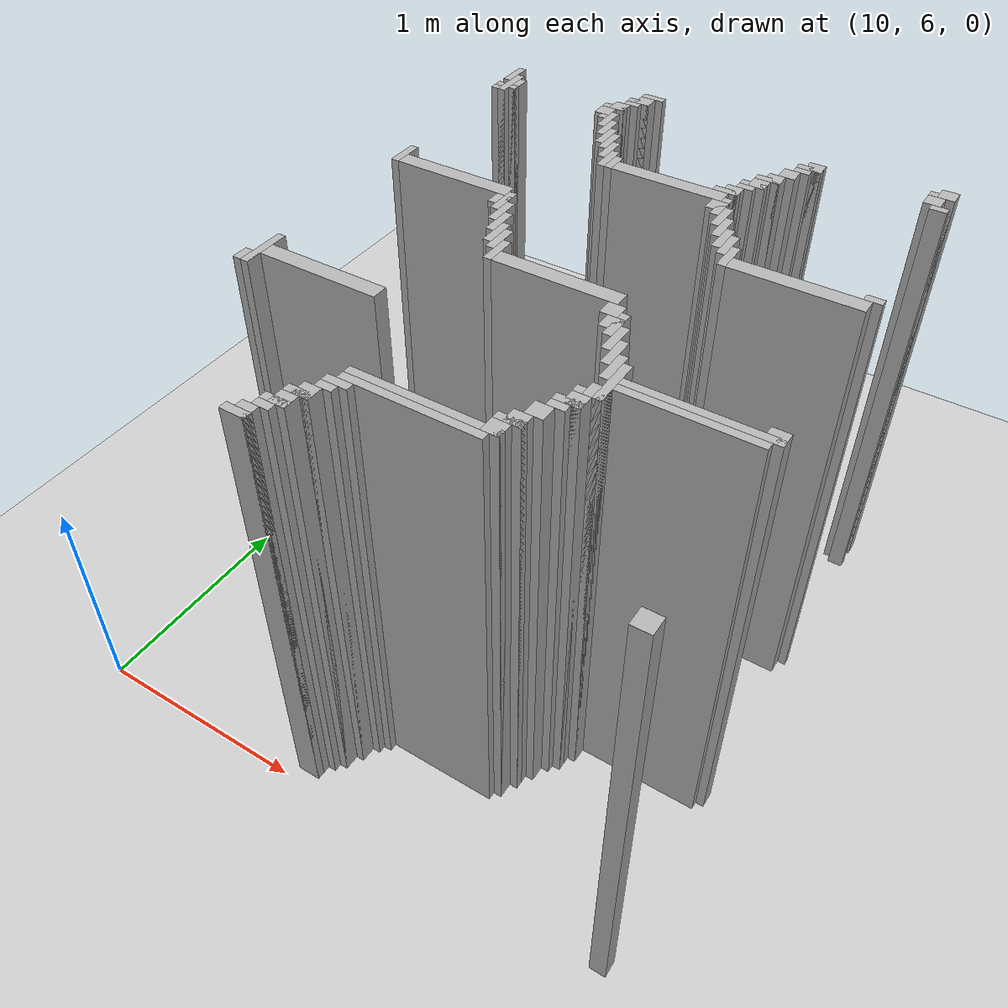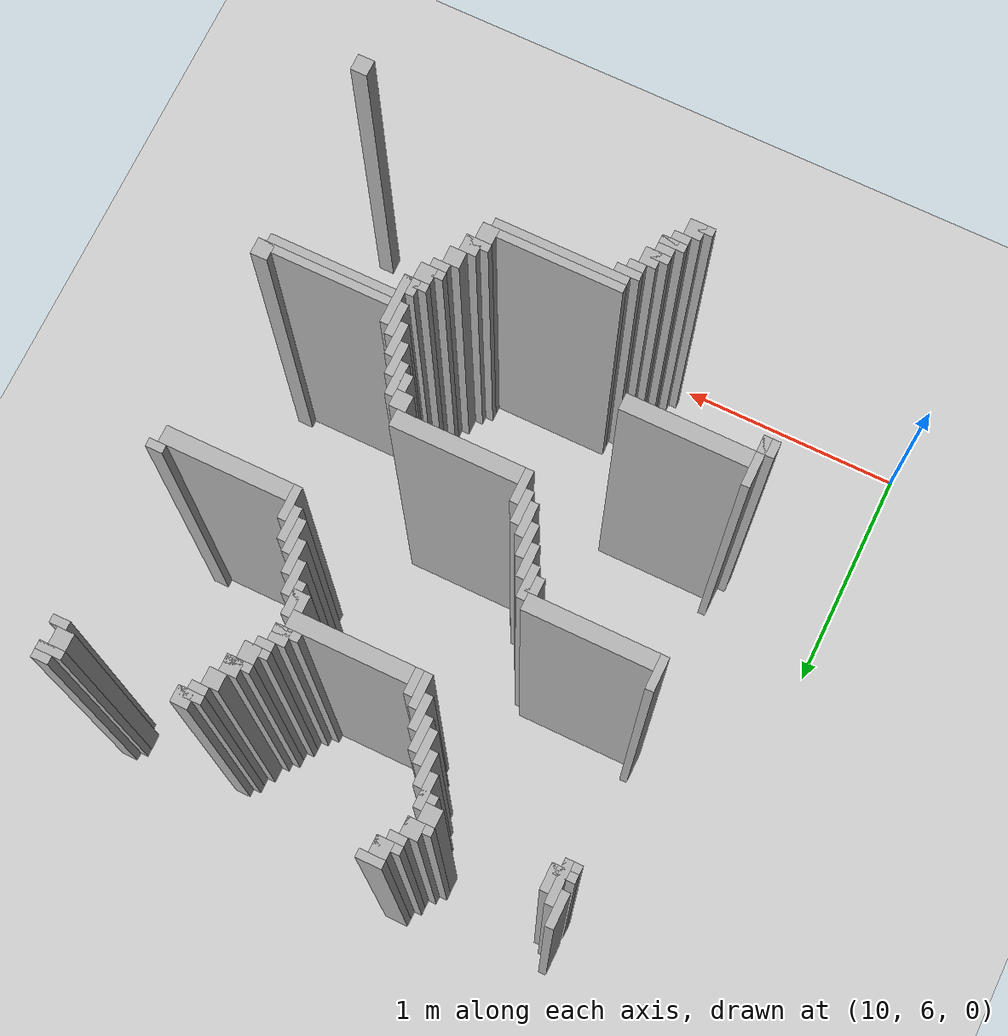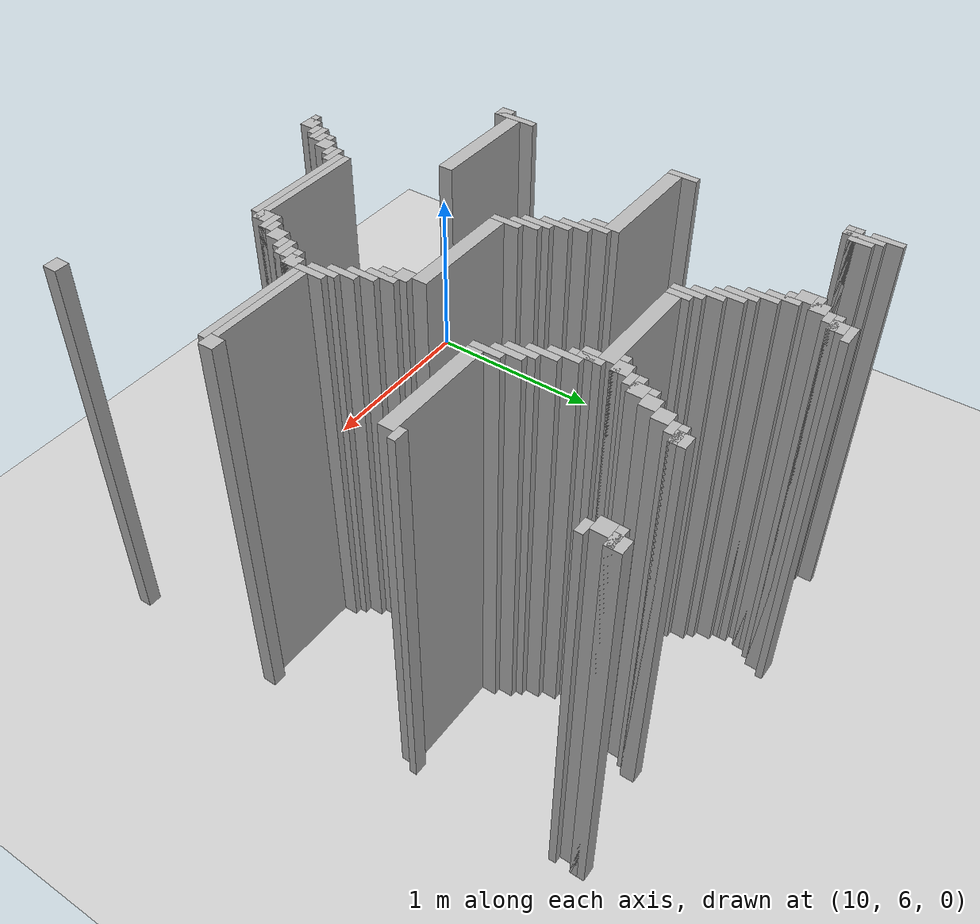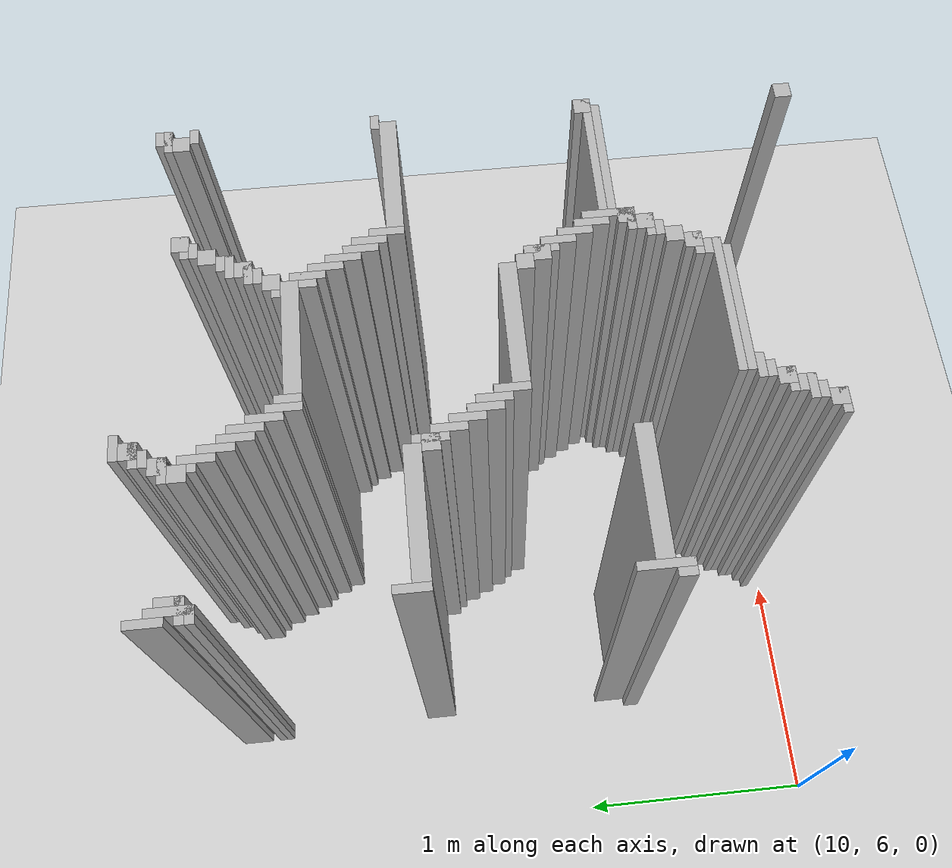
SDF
<sdf version="1.6">
 <world name="slam_world">
  <model name="ground_plane">
   <static>true</static>
   <link name="link">
    <collision name="collision">
     <geometry><plane><normal>0 0 1</normal><size>100 100</size></plane></geometry>
    </collision>
    <visual name="visual">
     <geometry><plane><normal>0 0 1</normal><size>100 100</size></plane></geometry>
     <material>
      <ambient>0.8 0.8 0.8 1</ambient>
      <diffuse>0.8 0.8 0.8 1</diffuse>
      <specular>0.8 0.8 0.8 1</specular>
     </material>
    </visual>
   </link>
  </model>
  <model name="wall_2947">
   <static>true</static>
   <pose>11.154292343387471 8.718097447795824 1.0 0 0 0</pose>
   <link name="link">
    <collision name="collision">
     <geometry><box><size>0.10440835266821345 0.03480278422273782 2.0</size></box></geometry>
    </collision>
    <visual name="visual">
     <geometry><box><size>0.10440835266821345 0.03480278422273782 2.0</size></box></geometry>
     <material><ambient>0.5 0.5 0.5 1</ambient><diffuse>0.7 0.7 0.7 1</diffuse></material>
    </visual>
   </link>
  </model>
  <model name="wall_2958">
   <static>true</static>
   <pose>11.1368909512761 8.665893271461716 1.0 0 0 0</pose>
   <link name="link">
    <collision name="collision">
     <geometry><box><size>0.06960556844547564 0.06960556844547564 2.0</size></box></geometry>
    </collision>
    <visual name="visual">
     <geometry><box><size>0.06960556844547564 0.06960556844547564 2.0</size></box></geometry>
     <material><ambient>0.5 0.5 0.5 1</ambient><diffuse>0.7 0.7 0.7 1</diffuse></material>
    </visual>
   </link>
  </model>
  <model name="wall_2971">
   <static>true</static>
   <pose>10.493039443155451 8.596287703016241 1.0 0 0 0</pose>
   <link name="link">
    <collision name="collision">
     <geometry><box><size>0.03480278422273782 0.13921113689095127 2.0</size></box></geometry>
    </collision>
    <visual name="visual">
     <geometry><box><size>0.03480278422273782 0.13921113689095127 2.0</size></box></geometry>
     <material><ambient>0.5 0.5 0.5 1</ambient><diffuse>0.7 0.7 0.7 1</diffuse></material>
    </visual>
   </link>
  </model>
  <model name="wall_2972">
   <static>true</static>
   <pose>11.119489559164732 8.648491879350347 1.0 0 0 0</pose>
   <link name="link">
    <collision name="collision">
     <geometry><box><size>0.10440835266821345 0.03480278422273782 2.0</size></box></geometry>
    </collision>
    <visual name="visual">
     <geometry><box><size>0.10440835266821345 0.03480278422273782 2.0</size></box></geometry>
     <material><ambient>0.5 0.5 0.5 1</ambient><diffuse>0.7 0.7 0.7 1</diffuse></material>
    </visual>
   </link>
  </model>
  <model name="wall_2982">
   <static>true</static>
   <pose>11.102088167053363 8.61368909512761 1.0 0 0 0</pose>
   <link name="link">
    <collision name="collision">
     <geometry><box><size>0.06960556844547564 0.03480278422273782 2.0</size></box></geometry>
    </collision>
    <visual name="visual">
     <geometry><box><size>0.06960556844547564 0.03480278422273782 2.0</size></box></geometry>
     <material><ambient>0.5 0.5 0.5 1</ambient><diffuse>0.7 0.7 0.7 1</diffuse></material>
    </visual>
   </link>
  </model>
  <model name="wall_2995">
   <static>true</static>
   <pose>10.52784222737819 8.509280742459396 1.0 0 0 0</pose>
   <link name="link">
    <collision name="collision">
     <geometry><box><size>0.03480278422273782 0.17401392111368907 2.0</size></box></geometry>
    </collision>
    <visual name="visual">
     <geometry><box><size>0.03480278422273782 0.17401392111368907 2.0</size></box></geometry>
     <material><ambient>0.5 0.5 0.5 1</ambient><diffuse>0.7 0.7 0.7 1</diffuse></material>
    </visual>
   </link>
  </model>
  <model name="wall_2996">
   <static>true</static>
   <pose>11.067285382830626 8.561484918793504 1.0 0 0 0</pose>
   <link name="link">
    <collision name="collision">
     <geometry><box><size>0.06960556844547564 0.06960556844547564 2.0</size></box></geometry>
    </collision>
    <visual name="visual">
     <geometry><box><size>0.06960556844547564 0.06960556844547564 2.0</size></box></geometry>
     <material><ambient>0.5 0.5 0.5 1</ambient><diffuse>0.7 0.7 0.7 1</diffuse></material>
    </visual>
   </link>
  </model>
  <model name="wall_2997">
   <static>true</static>
   <pose>12.529002320185615 8.561484918793504 1.0 0 0 0</pose>
   <link name="link">
    <collision name="collision">
     <geometry><box><size>0.06960556844547564 0.06960556844547564 2.0</size></box></geometry>
    </collision>
    <visual name="visual">
     <geometry><box><size>0.06960556844547564 0.06960556844547564 2.0</size></box></geometry>
     <material><ambient>0.5 0.5 0.5 1</ambient><diffuse>0.7 0.7 0.7 1</diffuse></material>
    </visual>
   </link>
  </model>
  <model name="wall_3010">
   <static>true</static>
   <pose>10.562645011600928 8.509280742459396 1.0 0 0 0</pose>
   <link name="link">
    <collision name="collision">
     <geometry><box><size>0.03480278422273782 0.10440835266821345 2.0</size></box></geometry>
    </collision>
    <visual name="visual">
     <geometry><box><size>0.03480278422273782 0.10440835266821345 2.0</size></box></geometry>
     <material><ambient>0.5 0.5 0.5 1</ambient><diffuse>0.7 0.7 0.7 1</diffuse></material>
    </visual>
   </link>
  </model>
  <model name="wall_3011">
   <static>true</static>
   <pose>11.049883990719257 8.544083526682135 1.0 0 0 0</pose>
   <link name="link">
    <collision name="collision">
     <geometry><box><size>0.10440835266821345 0.03480278422273782 2.0</size></box></geometry>
    </collision>
    <visual name="visual">
     <geometry><box><size>0.10440835266821345 0.03480278422273782 2.0</size></box></geometry>
     <material><ambient>0.5 0.5 0.5 1</ambient><diffuse>0.7 0.7 0.7 1</diffuse></material>
    </visual>
   </link>
  </model>
  <model name="wall_3012">
   <static>true</static>
   <pose>12.511600928074245 8.544083526682135 1.0 0 0 0</pose>
   <link name="link">
    <collision name="collision">
     <geometry><box><size>0.10440835266821345 0.03480278422273782 2.0</size></box></geometry>
    </collision>
    <visual name="visual">
     <geometry><box><size>0.10440835266821345 0.03480278422273782 2.0</size></box></geometry>
     <material><ambient>0.5 0.5 0.5 1</ambient><diffuse>0.7 0.7 0.7 1</diffuse></material>
    </visual>
   </link>
  </model>
  <model name="wall_3023">
   <static>true</static>
   <pose>11.032482598607888 8.491879350348027 1.0 0 0 0</pose>
   <link name="link">
    <collision name="collision">
     <geometry><box><size>0.06960556844547564 0.06960556844547564 2.0</size></box></geometry>
    </collision>
    <visual name="visual">
     <geometry><box><size>0.06960556844547564 0.06960556844547564 2.0</size></box></geometry>
     <material><ambient>0.5 0.5 0.5 1</ambient><diffuse>0.7 0.7 0.7 1</diffuse></material>
    </visual>
   </link>
  </model>
  <model name="wall_3024">
   <static>true</static>
   <pose>12.006960556844547 8.491879350348027 1.0 0 0 0</pose>
   <link name="link">
    <collision name="collision">
     <geometry><box><size>0.06960556844547564 0.06960556844547564 2.0</size></box></geometry>
    </collision>
    <visual name="visual">
     <geometry><box><size>0.06960556844547564 0.06960556844547564 2.0</size></box></geometry>
     <material><ambient>0.5 0.5 0.5 1</ambient><diffuse>0.7 0.7 0.7 1</diffuse></material>
    </visual>
   </link>
  </model>
  <model name="wall_3025">
   <static>true</static>
   <pose>12.494199535962876 8.491879350348027 1.0 0 0 0</pose>
   <link name="link">
    <collision name="collision">
     <geometry><box><size>0.06960556844547564 0.06960556844547564 2.0</size></box></geometry>
    </collision>
    <visual name="visual">
     <geometry><box><size>0.06960556844547564 0.06960556844547564 2.0</size></box></geometry>
     <material><ambient>0.5 0.5 0.5 1</ambient><diffuse>0.7 0.7 0.7 1</diffuse></material>
    </visual>
   </link>
  </model>
  <model name="wall_3036">
   <static>true</static>
   <pose>10.52784222737819 8.474477958236658 1.0 0 0 0</pose>
   <link name="link">
    <collision name="collision">
     <geometry><box><size>0.10440835266821345 0.03480278422273782 2.0</size></box></geometry>
    </collision>
    <visual name="visual">
     <geometry><box><size>0.10440835266821345 0.03480278422273782 2.0</size></box></geometry>
     <material><ambient>0.5 0.5 0.5 1</ambient><diffuse>0.7 0.7 0.7 1</diffuse></material>
    </visual>
   </link>
  </model>
  <model name="wall_3037">
   <static>true</static>
   <pose>11.084686774941995 8.422273781902552 1.0 0 0 0</pose>
   <link name="link">
    <collision name="collision">
     <geometry><box><size>0.03480278422273782 0.13921113689095127 2.0</size></box></geometry>
    </collision>
    <visual name="visual">
     <geometry><box><size>0.03480278422273782 0.13921113689095127 2.0</size></box></geometry>
     <material><ambient>0.5 0.5 0.5 1</ambient><diffuse>0.7 0.7 0.7 1</diffuse></material>
    </visual>
   </link>
  </model>
  <model name="wall_3038">
   <static>true</static>
   <pose>11.989559164733178 8.474477958236658 1.0 0 0 0</pose>
   <link name="link">
    <collision name="collision">
     <geometry><box><size>0.10440835266821345 0.03480278422273782 2.0</size></box></geometry>
    </collision>
    <visual name="visual">
     <geometry><box><size>0.10440835266821345 0.03480278422273782 2.0</size></box></geometry>
     <material><ambient>0.5 0.5 0.5 1</ambient><diffuse>0.7 0.7 0.7 1</diffuse></material>
    </visual>
   </link>
  </model>
  <model name="wall_3052">
   <static>true</static>
   <pose>10.51044083526682 8.43967517401392 1.0 0 0 0</pose>
   <link name="link">
    <collision name="collision">
     <geometry><box><size>0.06960556844547564 0.03480278422273782 2.0</size></box></geometry>
    </collision>
    <visual name="visual">
     <geometry><box><size>0.06960556844547564 0.03480278422273782 2.0</size></box></geometry>
     <material><ambient>0.5 0.5 0.5 1</ambient><diffuse>0.7 0.7 0.7 1</diffuse></material>
    </visual>
   </link>
  </model>
  <model name="wall_3053">
   <static>true</static>
   <pose>11.067285382830626 8.43967517401392 1.0 0 0 0</pose>
   <link name="link">
    <collision name="collision">
     <geometry><box><size>0.06960556844547564 0.03480278422273782 2.0</size></box></geometry>
    </collision>
    <visual name="visual">
     <geometry><box><size>0.06960556844547564 0.03480278422273782 2.0</size></box></geometry>
     <material><ambient>0.5 0.5 0.5 1</ambient><diffuse>0.7 0.7 0.7 1</diffuse></material>
    </visual>
   </link>
  </model>
  <model name="wall_3054">
   <static>true</static>
   <pose>11.97215777262181 8.43967517401392 1.0 0 0 0</pose>
   <link name="link">
    <collision name="collision">
     <geometry><box><size>0.06960556844547564 0.03480278422273782 2.0</size></box></geometry>
    </collision>
    <visual name="visual">
     <geometry><box><size>0.06960556844547564 0.03480278422273782 2.0</size></box></geometry>
     <material><ambient>0.5 0.5 0.5 1</ambient><diffuse>0.7 0.7 0.7 1</diffuse></material>
    </visual>
   </link>
  </model>
  <model name="wall_3055">
   <static>true</static>
   <pose>12.529002320185615 8.43967517401392 1.0 0 0 0</pose>
   <link name="link">
    <collision name="collision">
     <geometry><box><size>0.06960556844547564 0.03480278422273782 2.0</size></box></geometry>
    </collision>
    <visual name="visual">
     <geometry><box><size>0.06960556844547564 0.03480278422273782 2.0</size></box></geometry>
     <material><ambient>0.5 0.5 0.5 1</ambient><diffuse>0.7 0.7 0.7 1</diffuse></material>
    </visual>
   </link>
  </model>
  <model name="wall_3070">
   <static>true</static>
   <pose>11.119489559164732 8.352668213457076 1.0 0 0 0</pose>
   <link name="link">
    <collision name="collision">
     <geometry><box><size>0.03480278422273782 0.13921113689095127 2.0</size></box></geometry>
    </collision>
    <visual name="visual">
     <geometry><box><size>0.03480278422273782 0.13921113689095127 2.0</size></box></geometry>
     <material><ambient>0.5 0.5 0.5 1</ambient><diffuse>0.7 0.7 0.7 1</diffuse></material>
    </visual>
   </link>
  </model>
  <model name="wall_3071">
   <static>true</static>
   <pose>11.937354988399072 8.387470997679815 1.0 0 0 0</pose>
   <link name="link">
    <collision name="collision">
     <geometry><box><size>0.06960556844547564 0.06960556844547564 2.0</size></box></geometry>
    </collision>
    <visual name="visual">
     <geometry><box><size>0.06960556844547564 0.06960556844547564 2.0</size></box></geometry>
     <material><ambient>0.5 0.5 0.5 1</ambient><diffuse>0.7 0.7 0.7 1</diffuse></material>
    </visual>
   </link>
  </model>
  <model name="wall_3087">
   <static>true</static>
   <pose>11.154292343387471 8.2830626450116 1.0 0 0 0</pose>
   <link name="link">
    <collision name="collision">
     <geometry><box><size>0.03480278422273782 0.13921113689095127 2.0</size></box></geometry>
    </collision>
    <visual name="visual">
     <geometry><box><size>0.03480278422273782 0.13921113689095127 2.0</size></box></geometry>
     <material><ambient>0.5 0.5 0.5 1</ambient><diffuse>0.7 0.7 0.7 1</diffuse></material>
    </visual>
   </link>
  </model>
  <model name="wall_3088">
   <static>true</static>
   <pose>11.902552204176333 8.317865429234338 1.0 0 0 0</pose>
   <link name="link">
    <collision name="collision">
     <geometry><box><size>0.06960556844547564 0.06960556844547564 2.0</size></box></geometry>
    </collision>
    <visual name="visual">
     <geometry><box><size>0.06960556844547564 0.06960556844547564 2.0</size></box></geometry>
     <material><ambient>0.5 0.5 0.5 1</ambient><diffuse>0.7 0.7 0.7 1</diffuse></material>
    </visual>
   </link>
  </model>
  <model name="wall_3104">
   <static>true</static>
   <pose>11.189095127610209 8.248259860788863 1.0 0 0 0</pose>
   <link name="link">
    <collision name="collision">
     <geometry><box><size>0.03480278422273782 0.13921113689095127 2.0</size></box></geometry>
    </collision>
    <visual name="visual">
     <geometry><box><size>0.03480278422273782 0.13921113689095127 2.0</size></box></geometry>
     <material><ambient>0.5 0.5 0.5 1</ambient><diffuse>0.7 0.7 0.7 1</diffuse></material>
    </visual>
   </link>
  </model>
  <model name="wall_3105">
   <static>true</static>
   <pose>11.885150812064964 8.30046403712297 1.0 0 0 0</pose>
   <link name="link">
    <collision name="collision">
     <geometry><box><size>0.10440835266821345 0.03480278422273782 2.0</size></box></geometry>
    </collision>
    <visual name="visual">
     <geometry><box><size>0.10440835266821345 0.03480278422273782 2.0</size></box></geometry>
     <material><ambient>0.5 0.5 0.5 1</ambient><diffuse>0.7 0.7 0.7 1</diffuse></material>
    </visual>
   </link>
  </model>
  <model name="wall_3119">
   <static>true</static>
   <pose>11.867749419953595 8.248259860788863 1.0 0 0 0</pose>
   <link name="link">
    <collision name="collision">
     <geometry><box><size>0.06960556844547564 0.06960556844547564 2.0</size></box></geometry>
    </collision>
    <visual name="visual">
     <geometry><box><size>0.06960556844547564 0.06960556844547564 2.0</size></box></geometry>
     <material><ambient>0.5 0.5 0.5 1</ambient><diffuse>0.7 0.7 0.7 1</diffuse></material>
    </visual>
   </link>
  </model>
  <model name="wall_3134">
   <static>true</static>
   <pose>11.223897911832946 8.178654292343387 1.0 0 0 0</pose>
   <link name="link">
    <collision name="collision">
     <geometry><box><size>0.03480278422273782 0.13921113689095127 2.0</size></box></geometry>
    </collision>
    <visual name="visual">
     <geometry><box><size>0.03480278422273782 0.13921113689095127 2.0</size></box></geometry>
     <material><ambient>0.5 0.5 0.5 1</ambient><diffuse>0.7 0.7 0.7 1</diffuse></material>
    </visual>
   </link>
  </model>
  <model name="wall_3135">
   <static>true</static>
   <pose>11.850348027842227 8.230858468677495 1.0 0 0 0</pose>
   <link name="link">
    <collision name="collision">
     <geometry><box><size>0.10440835266821345 0.03480278422273782 2.0</size></box></geometry>
    </collision>
    <visual name="visual">
     <geometry><box><size>0.10440835266821345 0.03480278422273782 2.0</size></box></geometry>
     <material><ambient>0.5 0.5 0.5 1</ambient><diffuse>0.7 0.7 0.7 1</diffuse></material>
    </visual>
   </link>
  </model>
  <model name="wall_3146">
   <static>true</static>
   <pose>11.832946635730858 8.196055684454755 1.0 0 0 0</pose>
   <link name="link">
    <collision name="collision">
     <geometry><box><size>0.06960556844547564 0.03480278422273782 2.0</size></box></geometry>
    </collision>
    <visual name="visual">
     <geometry><box><size>0.06960556844547564 0.03480278422273782 2.0</size></box></geometry>
     <material><ambient>0.5 0.5 0.5 1</ambient><diffuse>0.7 0.7 0.7 1</diffuse></material>
    </visual>
   </link>
  </model>
  <model name="wall_3160">
   <static>true</static>
   <pose>11.258700696055683 8.109048723897912 1.0 0 0 0</pose>
   <link name="link">
    <collision name="collision">
     <geometry><box><size>0.03480278422273782 0.13921113689095127 2.0</size></box></geometry>
    </collision>
    <visual name="visual">
     <geometry><box><size>0.03480278422273782 0.13921113689095127 2.0</size></box></geometry>
     <material><ambient>0.5 0.5 0.5 1</ambient><diffuse>0.7 0.7 0.7 1</diffuse></material>
    </visual>
   </link>
  </model>
  <model name="wall_3161">
   <static>true</static>
   <pose>11.79814385150812 8.14385150812065 1.0 0 0 0</pose>
   <link name="link">
    <collision name="collision">
     <geometry><box><size>0.06960556844547564 0.06960556844547564 2.0</size></box></geometry>
    </collision>
    <visual name="visual">
     <geometry><box><size>0.06960556844547564 0.06960556844547564 2.0</size></box></geometry>
     <material><ambient>0.5 0.5 0.5 1</ambient><diffuse>0.7 0.7 0.7 1</diffuse></material>
    </visual>
   </link>
  </model>
  <model name="wall_3173">
   <static>true</static>
   <pose>11.293503480278423 8.091647331786543 1.0 0 0 0</pose>
   <link name="link">
    <collision name="collision">
     <geometry><box><size>0.03480278422273782 0.10440835266821345 2.0</size></box></geometry>
    </collision>
    <visual name="visual">
     <geometry><box><size>0.03480278422273782 0.10440835266821345 2.0</size></box></geometry>
     <material><ambient>0.5 0.5 0.5 1</ambient><diffuse>0.7 0.7 0.7 1</diffuse></material>
    </visual>
   </link>
  </model>
  <model name="wall_3174">
   <static>true</static>
   <pose>11.780742459396752 8.12645011600928 1.0 0 0 0</pose>
   <link name="link">
    <collision name="collision">
     <geometry><box><size>0.10440835266821345 0.03480278422273782 2.0</size></box></geometry>
    </collision>
    <visual name="visual">
     <geometry><box><size>0.10440835266821345 0.03480278422273782 2.0</size></box></geometry>
     <material><ambient>0.5 0.5 0.5 1</ambient><diffuse>0.7 0.7 0.7 1</diffuse></material>
    </visual>
   </link>
  </model>
  <model name="wall_3188">
   <static>true</static>
   <pose>11.554524361948955 8.074245939675174 1.0 0 0 0</pose>
   <link name="link">
    <collision name="collision">
     <geometry><box><size>0.4872389791183295 0.06960556844547564 2.0</size></box></geometry>
    </collision>
    <visual name="visual">
     <geometry><box><size>0.4872389791183295 0.06960556844547564 2.0</size></box></geometry>
     <material><ambient>0.5 0.5 0.5 1</ambient><diffuse>0.7 0.7 0.7 1</diffuse></material>
    </visual>
   </link>
  </model>
  <model name="wall_3201">
   <static>true</static>
   <pose>11.81554524361949 8.004640371229698 1.0 0 0 0</pose>
   <link name="link">
    <collision name="collision">
     <geometry><box><size>0.03480278422273782 0.13921113689095127 2.0</size></box></geometry>
    </collision>
    <visual name="visual">
     <geometry><box><size>0.03480278422273782 0.13921113689095127 2.0</size></box></geometry>
     <material><ambient>0.5 0.5 0.5 1</ambient><diffuse>0.7 0.7 0.7 1</diffuse></material>
    </visual>
   </link>
  </model>
  <model name="wall_3214">
   <static>true</static>
   <pose>11.79814385150812 8.004640371229698 1.0 0 0 0</pose>
   <link name="link">
    <collision name="collision">
     <geometry><box><size>0.06960556844547564 0.06960556844547564 2.0</size></box></geometry>
    </collision>
    <visual name="visual">
     <geometry><box><size>0.06960556844547564 0.06960556844547564 2.0</size></box></geometry>
     <material><ambient>0.5 0.5 0.5 1</ambient><diffuse>0.7 0.7 0.7 1</diffuse></material>
    </visual>
   </link>
  </model>
  <model name="wall_3227">
   <static>true</static>
   <pose>11.850348027842227 7.935034802784222 1.0 0 0 0</pose>
   <link name="link">
    <collision name="collision">
     <geometry><box><size>0.03480278422273782 0.13921113689095127 2.0</size></box></geometry>
    </collision>
    <visual name="visual">
     <geometry><box><size>0.03480278422273782 0.13921113689095127 2.0</size></box></geometry>
     <material><ambient>0.5 0.5 0.5 1</ambient><diffuse>0.7 0.7 0.7 1</diffuse></material>
    </visual>
   </link>
  </model>
  <model name="wall_3245">
   <static>true</static>
   <pose>11.885150812064964 7.865429234338746 1.0 0 0 0</pose>
   <link name="link">
    <collision name="collision">
     <geometry><box><size>0.03480278422273782 0.13921113689095127 2.0</size></box></geometry>
    </collision>
    <visual name="visual">
     <geometry><box><size>0.03480278422273782 0.13921113689095127 2.0</size></box></geometry>
     <material><ambient>0.5 0.5 0.5 1</ambient><diffuse>0.7 0.7 0.7 1</diffuse></material>
    </visual>
   </link>
  </model>
  <model name="wall_3258">
   <static>true</static>
   <pose>11.919953596287703 7.795823665893272 1.0 0 0 0</pose>
   <link name="link">
    <collision name="collision">
     <geometry><box><size>0.03480278422273782 0.13921113689095127 2.0</size></box></geometry>
    </collision>
    <visual name="visual">
     <geometry><box><size>0.03480278422273782 0.13921113689095127 2.0</size></box></geometry>
     <material><ambient>0.5 0.5 0.5 1</ambient><diffuse>0.7 0.7 0.7 1</diffuse></material>
    </visual>
   </link>
  </model>
  <model name="wall_3271">
   <static>true</static>
   <pose>11.95475638051044 7.761020881670533 1.0 0 0 0</pose>
   <link name="link">
    <collision name="collision">
     <geometry><box><size>0.03480278422273782 0.13921113689095127 2.0</size></box></geometry>
    </collision>
    <visual name="visual">
     <geometry><box><size>0.03480278422273782 0.13921113689095127 2.0</size></box></geometry>
     <material><ambient>0.5 0.5 0.5 1</ambient><diffuse>0.7 0.7 0.7 1</diffuse></material>
    </visual>
   </link>
  </model>
  <model name="wall_3288">
   <static>true</static>
   <pose>10.52784222737819 7.691415313225058 1.0 0 0 0</pose>
   <link name="link">
    <collision name="collision">
     <geometry><box><size>0.03480278422273782 0.13921113689095127 2.0</size></box></geometry>
    </collision>
    <visual name="visual">
     <geometry><box><size>0.03480278422273782 0.13921113689095127 2.0</size></box></geometry>
     <material><ambient>0.5 0.5 0.5 1</ambient><diffuse>0.7 0.7 0.7 1</diffuse></material>
    </visual>
   </link>
  </model>
  <model name="wall_3289">
   <static>true</static>
   <pose>11.989559164733178 7.691415313225058 1.0 0 0 0</pose>
   <link name="link">
    <collision name="collision">
     <geometry><box><size>0.03480278422273782 0.13921113689095127 2.0</size></box></geometry>
    </collision>
    <visual name="visual">
     <geometry><box><size>0.03480278422273782 0.13921113689095127 2.0</size></box></geometry>
     <material><ambient>0.5 0.5 0.5 1</ambient><diffuse>0.7 0.7 0.7 1</diffuse></material>
    </visual>
   </link>
  </model>
  <model name="wall_3297">
   <static>true</static>
   <pose>12.529002320185615 7.708816705336426 1.0 0 0 0</pose>
   <link name="link">
    <collision name="collision">
     <geometry><box><size>0.06960556844547564 0.03480278422273782 2.0</size></box></geometry>
    </collision>
    <visual name="visual">
     <geometry><box><size>0.06960556844547564 0.03480278422273782 2.0</size></box></geometry>
     <material><ambient>0.5 0.5 0.5 1</ambient><diffuse>0.7 0.7 0.7 1</diffuse></material>
    </visual>
   </link>
  </model>
  <model name="wall_3307">
   <static>true</static>
   <pose>10.806264501160092 7.65661252900232 1.0 0 0 0</pose>
   <link name="link">
    <collision name="collision">
     <geometry><box><size>0.5220417633410672 0.06960556844547564 2.0</size></box></geometry>
    </collision>
    <visual name="visual">
     <geometry><box><size>0.5220417633410672 0.06960556844547564 2.0</size></box></geometry>
     <material><ambient>0.5 0.5 0.5 1</ambient><diffuse>0.7 0.7 0.7 1</diffuse></material>
    </visual>
   </link>
  </model>
  <model name="wall_3308">
   <static>true</static>
   <pose>12.267981438515081 7.65661252900232 1.0 0 0 0</pose>
   <link name="link">
    <collision name="collision">
     <geometry><box><size>0.5220417633410672 0.06960556844547564 2.0</size></box></geometry>
    </collision>
    <visual name="visual">
     <geometry><box><size>0.5220417633410672 0.06960556844547564 2.0</size></box></geometry>
     <material><ambient>0.5 0.5 0.5 1</ambient><diffuse>0.7 0.7 0.7 1</diffuse></material>
    </visual>
   </link>
  </model>
  <model name="wall_3320">
   <static>true</static>
   <pose>11.084686774941995 7.587006960556844 1.0 0 0 0</pose>
   <link name="link">
    <collision name="collision">
     <geometry><box><size>0.03480278422273782 0.13921113689095127 2.0</size></box></geometry>
    </collision>
    <visual name="visual">
     <geometry><box><size>0.03480278422273782 0.13921113689095127 2.0</size></box></geometry>
     <material><ambient>0.5 0.5 0.5 1</ambient><diffuse>0.7 0.7 0.7 1</diffuse></material>
    </visual>
   </link>
  </model>
  <model name="wall_3335">
   <static>true</static>
   <pose>11.067285382830626 7.587006960556844 1.0 0 0 0</pose>
   <link name="link">
    <collision name="collision">
     <geometry><box><size>0.06960556844547564 0.06960556844547564 2.0</size></box></geometry>
    </collision>
    <visual name="visual">
     <geometry><box><size>0.06960556844547564 0.06960556844547564 2.0</size></box></geometry>
     <material><ambient>0.5 0.5 0.5 1</ambient><diffuse>0.7 0.7 0.7 1</diffuse></material>
    </visual>
   </link>
  </model>
  <model name="wall_3350">
   <static>true</static>
   <pose>11.119489559164732 7.517401392111369 1.0 0 0 0</pose>
   <link name="link">
    <collision name="collision">
     <geometry><box><size>0.03480278422273782 0.13921113689095127 2.0</size></box></geometry>
    </collision>
    <visual name="visual">
     <geometry><box><size>0.03480278422273782 0.13921113689095127 2.0</size></box></geometry>
     <material><ambient>0.5 0.5 0.5 1</ambient><diffuse>0.7 0.7 0.7 1</diffuse></material>
    </visual>
   </link>
  </model>
  <model name="wall_3375">
   <static>true</static>
   <pose>11.154292343387471 7.447795823665893 1.0 0 0 0</pose>
   <link name="link">
    <collision name="collision">
     <geometry><box><size>0.03480278422273782 0.13921113689095127 2.0</size></box></geometry>
    </collision>
    <visual name="visual">
     <geometry><box><size>0.03480278422273782 0.13921113689095127 2.0</size></box></geometry>
     <material><ambient>0.5 0.5 0.5 1</ambient><diffuse>0.7 0.7 0.7 1</diffuse></material>
    </visual>
   </link>
  </model>
  <model name="wall_3390">
   <static>true</static>
   <pose>11.189095127610209 7.378190255220417 1.0 0 0 0</pose>
   <link name="link">
    <collision name="collision">
     <geometry><box><size>0.03480278422273782 0.13921113689095127 2.0</size></box></geometry>
    </collision>
    <visual name="visual">
     <geometry><box><size>0.03480278422273782 0.13921113689095127 2.0</size></box></geometry>
     <material><ambient>0.5 0.5 0.5 1</ambient><diffuse>0.7 0.7 0.7 1</diffuse></material>
    </visual>
   </link>
  </model>
  <model name="wall_3405">
   <static>true</static>
   <pose>11.223897911832946 7.34338747099768 1.0 0 0 0</pose>
   <link name="link">
    <collision name="collision">
     <geometry><box><size>0.03480278422273782 0.13921113689095127 2.0</size></box></geometry>
    </collision>
    <visual name="visual">
     <geometry><box><size>0.03480278422273782 0.13921113689095127 2.0</size></box></geometry>
     <material><ambient>0.5 0.5 0.5 1</ambient><diffuse>0.7 0.7 0.7 1</diffuse></material>
    </visual>
   </link>
  </model>
  <model name="wall_3427">
   <static>true</static>
   <pose>11.258700696055683 7.273781902552204 1.0 0 0 0</pose>
   <link name="link">
    <collision name="collision">
     <geometry><box><size>0.03480278422273782 0.13921113689095127 2.0</size></box></geometry>
    </collision>
    <visual name="visual">
     <geometry><box><size>0.03480278422273782 0.13921113689095127 2.0</size></box></geometry>
     <material><ambient>0.5 0.5 0.5 1</ambient><diffuse>0.7 0.7 0.7 1</diffuse></material>
    </visual>
   </link>
  </model>
  <model name="wall_3447">
   <static>true</static>
   <pose>11.537122969837586 7.238979118329466 1.0 0 0 0</pose>
   <link name="link">
    <collision name="collision">
     <geometry><box><size>0.5220417633410672 0.06960556844547564 2.0</size></box></geometry>
    </collision>
    <visual name="visual">
     <geometry><box><size>0.5220417633410672 0.06960556844547564 2.0</size></box></geometry>
     <material><ambient>0.5 0.5 0.5 1</ambient><diffuse>0.7 0.7 0.7 1</diffuse></material>
    </visual>
   </link>
  </model>
  <model name="wall_3459">
   <static>true</static>
   <pose>11.79814385150812 7.16937354988399 1.0 0 0 0</pose>
   <link name="link">
    <collision name="collision">
     <geometry><box><size>0.06960556844547564 0.06960556844547564 2.0</size></box></geometry>
    </collision>
    <visual name="visual">
     <geometry><box><size>0.06960556844547564 0.06960556844547564 2.0</size></box></geometry>
     <material><ambient>0.5 0.5 0.5 1</ambient><diffuse>0.7 0.7 0.7 1</diffuse></material>
    </visual>
   </link>
  </model>
  <model name="wall_3472">
   <static>true</static>
   <pose>11.850348027842227 7.099767981438514 1.0 0 0 0</pose>
   <link name="link">
    <collision name="collision">
     <geometry><box><size>0.03480278422273782 0.13921113689095127 2.0</size></box></geometry>
    </collision>
    <visual name="visual">
     <geometry><box><size>0.03480278422273782 0.13921113689095127 2.0</size></box></geometry>
     <material><ambient>0.5 0.5 0.5 1</ambient><diffuse>0.7 0.7 0.7 1</diffuse></material>
    </visual>
   </link>
  </model>
  <model name="wall_3485">
   <static>true</static>
   <pose>11.832946635730858 7.099767981438514 1.0 0 0 0</pose>
   <link name="link">
    <collision name="collision">
     <geometry><box><size>0.06960556844547564 0.06960556844547564 2.0</size></box></geometry>
    </collision>
    <visual name="visual">
     <geometry><box><size>0.06960556844547564 0.06960556844547564 2.0</size></box></geometry>
     <material><ambient>0.5 0.5 0.5 1</ambient><diffuse>0.7 0.7 0.7 1</diffuse></material>
    </visual>
   </link>
  </model>
  <model name="wall_3498">
   <static>true</static>
   <pose>11.885150812064964 7.03016241299304 1.0 0 0 0</pose>
   <link name="link">
    <collision name="collision">
     <geometry><box><size>0.03480278422273782 0.13921113689095127 2.0</size></box></geometry>
    </collision>
    <visual name="visual">
     <geometry><box><size>0.03480278422273782 0.13921113689095127 2.0</size></box></geometry>
     <material><ambient>0.5 0.5 0.5 1</ambient><diffuse>0.7 0.7 0.7 1</diffuse></material>
    </visual>
   </link>
  </model>
  <model name="wall_3515">
   <static>true</static>
   <pose>11.919953596287703 6.960556844547564 1.0 0 0 0</pose>
   <link name="link">
    <collision name="collision">
     <geometry><box><size>0.03480278422273782 0.13921113689095127 2.0</size></box></geometry>
    </collision>
    <visual name="visual">
     <geometry><box><size>0.03480278422273782 0.13921113689095127 2.0</size></box></geometry>
     <material><ambient>0.5 0.5 0.5 1</ambient><diffuse>0.7 0.7 0.7 1</diffuse></material>
    </visual>
   </link>
  </model>
  <model name="wall_3532">
   <static>true</static>
   <pose>11.95475638051044 6.890951276102088 1.0 0 0 0</pose>
   <link name="link">
    <collision name="collision">
     <geometry><box><size>0.03480278422273782 0.13921113689095127 2.0</size></box></geometry>
    </collision>
    <visual name="visual">
     <geometry><box><size>0.03480278422273782 0.13921113689095127 2.0</size></box></geometry>
     <material><ambient>0.5 0.5 0.5 1</ambient><diffuse>0.7 0.7 0.7 1</diffuse></material>
    </visual>
   </link>
  </model>
  <model name="wall_3544">
   <static>true</static>
   <pose>10.52784222737819 6.821345707656612 1.0 0 0 0</pose>
   <link name="link">
    <collision name="collision">
     <geometry><box><size>0.03480278422273782 0.2088167053364269 2.0</size></box></geometry>
    </collision>
    <visual name="visual">
     <geometry><box><size>0.03480278422273782 0.2088167053364269 2.0</size></box></geometry>
     <material><ambient>0.5 0.5 0.5 1</ambient><diffuse>0.7 0.7 0.7 1</diffuse></material>
    </visual>
   </link>
  </model>
  <model name="wall_3545">
   <static>true</static>
   <pose>11.989559164733178 6.821345707656612 1.0 0 0 0</pose>
   <link name="link">
    <collision name="collision">
     <geometry><box><size>0.03480278422273782 0.2088167053364269 2.0</size></box></geometry>
    </collision>
    <visual name="visual">
     <geometry><box><size>0.03480278422273782 0.2088167053364269 2.0</size></box></geometry>
     <material><ambient>0.5 0.5 0.5 1</ambient><diffuse>0.7 0.7 0.7 1</diffuse></material>
    </visual>
   </link>
  </model>
  <model name="wall_3552">
   <static>true</static>
   <pose>12.529002320185615 6.85614849187935 1.0 0 0 0</pose>
   <link name="link">
    <collision name="collision">
     <geometry><box><size>0.06960556844547564 0.06960556844547564 2.0</size></box></geometry>
    </collision>
    <visual name="visual">
     <geometry><box><size>0.06960556844547564 0.06960556844547564 2.0</size></box></geometry>
     <material><ambient>0.5 0.5 0.5 1</ambient><diffuse>0.7 0.7 0.7 1</diffuse></material>
    </visual>
   </link>
  </model>
  <model name="wall_3564">
   <static>true</static>
   <pose>10.806264501160092 6.821345707656612 1.0 0 0 0</pose>
   <link name="link">
    <collision name="collision">
     <geometry><box><size>0.5220417633410672 0.06960556844547564 2.0</size></box></geometry>
    </collision>
    <visual name="visual">
     <geometry><box><size>0.5220417633410672 0.06960556844547564 2.0</size></box></geometry>
     <material><ambient>0.5 0.5 0.5 1</ambient><diffuse>0.7 0.7 0.7 1</diffuse></material>
    </visual>
   </link>
  </model>
  <model name="wall_3565">
   <static>true</static>
   <pose>12.28538283062645 6.838747099767981 1.0 0 0 0</pose>
   <link name="link">
    <collision name="collision">
     <geometry><box><size>0.5568445475638051 0.03480278422273782 2.0</size></box></geometry>
    </collision>
    <visual name="visual">
     <geometry><box><size>0.5568445475638051 0.03480278422273782 2.0</size></box></geometry>
     <material><ambient>0.5 0.5 0.5 1</ambient><diffuse>0.7 0.7 0.7 1</diffuse></material>
    </visual>
   </link>
  </model>
  <model name="wall_3571">
   <static>true</static>
   <pose>12.267981438515081 6.803944315545244 1.0 0 0 0</pose>
   <link name="link">
    <collision name="collision">
     <geometry><box><size>0.5220417633410672 0.03480278422273782 2.0</size></box></geometry>
    </collision>
    <visual name="visual">
     <geometry><box><size>0.5220417633410672 0.03480278422273782 2.0</size></box></geometry>
     <material><ambient>0.5 0.5 0.5 1</ambient><diffuse>0.7 0.7 0.7 1</diffuse></material>
    </visual>
   </link>
  </model>
  <model name="wall_3582">
   <static>true</static>
   <pose>10.51044083526682 6.751740139211137 1.0 0 0 0</pose>
   <link name="link">
    <collision name="collision">
     <geometry><box><size>0.06960556844547564 0.06960556844547564 2.0</size></box></geometry>
    </collision>
    <visual name="visual">
     <geometry><box><size>0.06960556844547564 0.06960556844547564 2.0</size></box></geometry>
     <material><ambient>0.5 0.5 0.5 1</ambient><diffuse>0.7 0.7 0.7 1</diffuse></material>
    </visual>
   </link>
  </model>
  <model name="wall_3583">
   <static>true</static>
   <pose>11.97215777262181 6.751740139211137 1.0 0 0 0</pose>
   <link name="link">
    <collision name="collision">
     <geometry><box><size>0.06960556844547564 0.06960556844547564 2.0</size></box></geometry>
    </collision>
    <visual name="visual">
     <geometry><box><size>0.06960556844547564 0.06960556844547564 2.0</size></box></geometry>
     <material><ambient>0.5 0.5 0.5 1</ambient><diffuse>0.7 0.7 0.7 1</diffuse></material>
    </visual>
   </link>
  </model>
  <model name="wall_3597">
   <static>true</static>
   <pose>11.95475638051044 6.734338747099768 1.0 0 0 0</pose>
   <link name="link">
    <collision name="collision">
     <geometry><box><size>0.10440835266821345 0.03480278422273782 2.0</size></box></geometry>
    </collision>
    <visual name="visual">
     <geometry><box><size>0.10440835266821345 0.03480278422273782 2.0</size></box></geometry>
     <material><ambient>0.5 0.5 0.5 1</ambient><diffuse>0.7 0.7 0.7 1</diffuse></material>
    </visual>
   </link>
  </model>
  <model name="wall_3611">
   <static>true</static>
   <pose>11.937354988399072 6.682134570765661 1.0 0 0 0</pose>
   <link name="link">
    <collision name="collision">
     <geometry><box><size>0.06960556844547564 0.06960556844547564 2.0</size></box></geometry>
    </collision>
    <visual name="visual">
     <geometry><box><size>0.06960556844547564 0.06960556844547564 2.0</size></box></geometry>
     <material><ambient>0.5 0.5 0.5 1</ambient><diffuse>0.7 0.7 0.7 1</diffuse></material>
    </visual>
   </link>
  </model>
  <model name="wall_3625">
   <static>true</static>
   <pose>11.919953596287703 6.664733178654292 1.0 0 0 0</pose>
   <link name="link">
    <collision name="collision">
     <geometry><box><size>0.10440835266821345 0.03480278422273782 2.0</size></box></geometry>
    </collision>
    <visual name="visual">
     <geometry><box><size>0.10440835266821345 0.03480278422273782 2.0</size></box></geometry>
     <material><ambient>0.5 0.5 0.5 1</ambient><diffuse>0.7 0.7 0.7 1</diffuse></material>
    </visual>
   </link>
  </model>
  <model name="wall_3634">
   <static>true</static>
   <pose>11.902552204176333 6.629930394431554 1.0 0 0 0</pose>
   <link name="link">
    <collision name="collision">
     <geometry><box><size>0.06960556844547564 0.03480278422273782 2.0</size></box></geometry>
    </collision>
    <visual name="visual">
     <geometry><box><size>0.06960556844547564 0.03480278422273782 2.0</size></box></geometry>
     <material><ambient>0.5 0.5 0.5 1</ambient><diffuse>0.7 0.7 0.7 1</diffuse></material>
    </visual>
   </link>
  </model>
  <model name="wall_3647">
   <static>true</static>
   <pose>11.867749419953595 6.577726218097448 1.0 0 0 0</pose>
   <link name="link">
    <collision name="collision">
     <geometry><box><size>0.06960556844547564 0.06960556844547564 2.0</size></box></geometry>
    </collision>
    <visual name="visual">
     <geometry><box><size>0.06960556844547564 0.06960556844547564 2.0</size></box></geometry>
     <material><ambient>0.5 0.5 0.5 1</ambient><diffuse>0.7 0.7 0.7 1</diffuse></material>
    </visual>
   </link>
  </model>
  <model name="wall_3661">
   <static>true</static>
   <pose>11.832946635730858 6.508120649651972 1.0 0 0 0</pose>
   <link name="link">
    <collision name="collision">
     <geometry><box><size>0.06960556844547564 0.06960556844547564 2.0</size></box></geometry>
    </collision>
    <visual name="visual">
     <geometry><box><size>0.06960556844547564 0.06960556844547564 2.0</size></box></geometry>
     <material><ambient>0.5 0.5 0.5 1</ambient><diffuse>0.7 0.7 0.7 1</diffuse></material>
    </visual>
   </link>
  </model>
  <model name="wall_3675">
   <static>true</static>
   <pose>11.81554524361949 6.490719257540603 1.0 0 0 0</pose>
   <link name="link">
    <collision name="collision">
     <geometry><box><size>0.10440835266821345 0.03480278422273782 2.0</size></box></geometry>
    </collision>
    <visual name="visual">
     <geometry><box><size>0.10440835266821345 0.03480278422273782 2.0</size></box></geometry>
     <material><ambient>0.5 0.5 0.5 1</ambient><diffuse>0.7 0.7 0.7 1</diffuse></material>
    </visual>
   </link>
  </model>
  <model name="wall_3684">
   <static>true</static>
   <pose>11.79814385150812 6.438515081206496 1.0 0 0 0</pose>
   <link name="link">
    <collision name="collision">
     <geometry><box><size>0.06960556844547564 0.06960556844547564 2.0</size></box></geometry>
    </collision>
    <visual name="visual">
     <geometry><box><size>0.06960556844547564 0.06960556844547564 2.0</size></box></geometry>
     <material><ambient>0.5 0.5 0.5 1</ambient><diffuse>0.7 0.7 0.7 1</diffuse></material>
    </visual>
   </link>
  </model>
  <model name="wall_3697">
   <static>true</static>
   <pose>11.537122969837586 6.421113689095128 1.0 0 0 0</pose>
   <link name="link">
    <collision name="collision">
     <geometry><box><size>0.5916473317865429 0.03480278422273782 2.0</size></box></geometry>
    </collision>
    <visual name="visual">
     <geometry><box><size>0.5916473317865429 0.03480278422273782 2.0</size></box></geometry>
     <material><ambient>0.5 0.5 0.5 1</ambient><diffuse>0.7 0.7 0.7 1</diffuse></material>
    </visual>
   </link>
  </model>
  <model name="wall_3707">
   <static>true</static>
   <pose>11.519721577726218 6.386310904872389 1.0 0 0 0</pose>
   <link name="link">
    <collision name="collision">
     <geometry><box><size>0.5568445475638051 0.03480278422273782 2.0</size></box></geometry>
    </collision>
    <visual name="visual">
     <geometry><box><size>0.5568445475638051 0.03480278422273782 2.0</size></box></geometry>
     <material><ambient>0.5 0.5 0.5 1</ambient><diffuse>0.7 0.7 0.7 1</diffuse></material>
    </visual>
   </link>
  </model>
  <model name="wall_3723">
   <static>true</static>
   <pose>11.258700696055683 6.351508120649652 1.0 0 0 0</pose>
   <link name="link">
    <collision name="collision">
     <geometry><box><size>0.10440835266821345 0.03480278422273782 2.0</size></box></geometry>
    </collision>
    <visual name="visual">
     <geometry><box><size>0.10440835266821345 0.03480278422273782 2.0</size></box></geometry>
     <material><ambient>0.5 0.5 0.5 1</ambient><diffuse>0.7 0.7 0.7 1</diffuse></material>
    </visual>
   </link>
  </model>
  <model name="wall_3734">
   <static>true</static>
   <pose>11.241299303944315 6.316705336426914 1.0 0 0 0</pose>
   <link name="link">
    <collision name="collision">
     <geometry><box><size>0.06960556844547564 0.03480278422273782 2.0</size></box></geometry>
    </collision>
    <visual name="visual">
     <geometry><box><size>0.06960556844547564 0.03480278422273782 2.0</size></box></geometry>
     <material><ambient>0.5 0.5 0.5 1</ambient><diffuse>0.7 0.7 0.7 1</diffuse></material>
    </visual>
   </link>
  </model>
  <model name="wall_3750">
   <static>true</static>
   <pose>11.206496519721577 6.2645011600928076 1.0 0 0 0</pose>
   <link name="link">
    <collision name="collision">
     <geometry><box><size>0.06960556844547564 0.06960556844547564 2.0</size></box></geometry>
    </collision>
    <visual name="visual">
     <geometry><box><size>0.06960556844547564 0.06960556844547564 2.0</size></box></geometry>
     <material><ambient>0.5 0.5 0.5 1</ambient><diffuse>0.7 0.7 0.7 1</diffuse></material>
    </visual>
   </link>
  </model>
  <model name="wall_3768">
   <static>true</static>
   <pose>11.189095127610209 6.247099767981438 1.0 0 0 0</pose>
   <link name="link">
    <collision name="collision">
     <geometry><box><size>0.10440835266821345 0.03480278422273782 2.0</size></box></geometry>
    </collision>
    <visual name="visual">
     <geometry><box><size>0.10440835266821345 0.03480278422273782 2.0</size></box></geometry>
     <material><ambient>0.5 0.5 0.5 1</ambient><diffuse>0.7 0.7 0.7 1</diffuse></material>
    </visual>
   </link>
  </model>
  <model name="wall_3786">
   <static>true</static>
   <pose>11.17169373549884 6.194895591647332 1.0 0 0 0</pose>
   <link name="link">
    <collision name="collision">
     <geometry><box><size>0.06960556844547564 0.06960556844547564 2.0</size></box></geometry>
    </collision>
    <visual name="visual">
     <geometry><box><size>0.06960556844547564 0.06960556844547564 2.0</size></box></geometry>
     <material><ambient>0.5 0.5 0.5 1</ambient><diffuse>0.7 0.7 0.7 1</diffuse></material>
    </visual>
   </link>
  </model>
  <model name="wall_3804">
   <static>true</static>
   <pose>11.154292343387471 6.177494199535962 1.0 0 0 0</pose>
   <link name="link">
    <collision name="collision">
     <geometry><box><size>0.10440835266821345 0.03480278422273782 2.0</size></box></geometry>
    </collision>
    <visual name="visual">
     <geometry><box><size>0.10440835266821345 0.03480278422273782 2.0</size></box></geometry>
     <material><ambient>0.5 0.5 0.5 1</ambient><diffuse>0.7 0.7 0.7 1</diffuse></material>
    </visual>
   </link>
  </model>
  <model name="wall_3814">
   <static>true</static>
   <pose>11.1368909512761 6.142691415313225 1.0 0 0 0</pose>
   <link name="link">
    <collision name="collision">
     <geometry><box><size>0.06960556844547564 0.03480278422273782 2.0</size></box></geometry>
    </collision>
    <visual name="visual">
     <geometry><box><size>0.06960556844547564 0.03480278422273782 2.0</size></box></geometry>
     <material><ambient>0.5 0.5 0.5 1</ambient><diffuse>0.7 0.7 0.7 1</diffuse></material>
    </visual>
   </link>
  </model>
  <model name="wall_3831">
   <static>true</static>
   <pose>11.102088167053363 6.090487238979118 1.0 0 0 0</pose>
   <link name="link">
    <collision name="collision">
     <geometry><box><size>0.06960556844547564 0.06960556844547564 2.0</size></box></geometry>
    </collision>
    <visual name="visual">
     <geometry><box><size>0.06960556844547564 0.06960556844547564 2.0</size></box></geometry>
     <material><ambient>0.5 0.5 0.5 1</ambient><diffuse>0.7 0.7 0.7 1</diffuse></material>
    </visual>
   </link>
  </model>
  <model name="wall_3849">
   <static>true</static>
   <pose>11.084686774941995 6.073085846867749 1.0 0 0 0</pose>
   <link name="link">
    <collision name="collision">
     <geometry><box><size>0.10440835266821345 0.03480278422273782 2.0</size></box></geometry>
    </collision>
    <visual name="visual">
     <geometry><box><size>0.10440835266821345 0.03480278422273782 2.0</size></box></geometry>
     <material><ambient>0.5 0.5 0.5 1</ambient><diffuse>0.7 0.7 0.7 1</diffuse></material>
    </visual>
   </link>
  </model>
  <model name="wall_3860">
   <static>true</static>
   <pose>12.529002320185615 6.020881670533642 1.0 0 0 0</pose>
   <link name="link">
    <collision name="collision">
     <geometry><box><size>0.06960556844547564 0.06960556844547564 2.0</size></box></geometry>
    </collision>
    <visual name="visual">
     <geometry><box><size>0.06960556844547564 0.06960556844547564 2.0</size></box></geometry>
     <material><ambient>0.5 0.5 0.5 1</ambient><diffuse>0.7 0.7 0.7 1</diffuse></material>
    </visual>
   </link>
  </model>
 </world>
</sdf>
